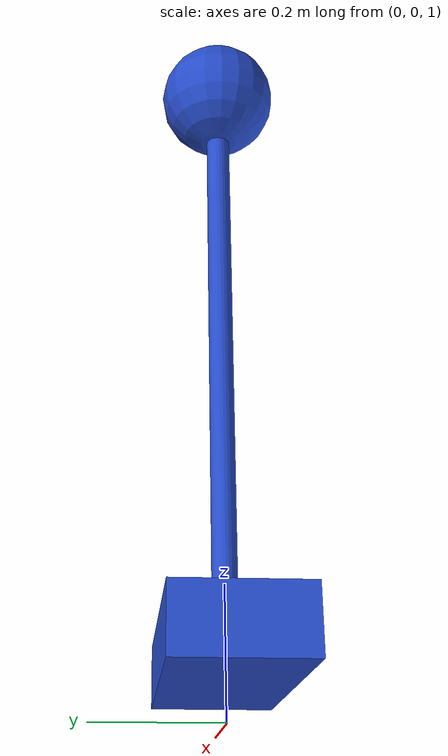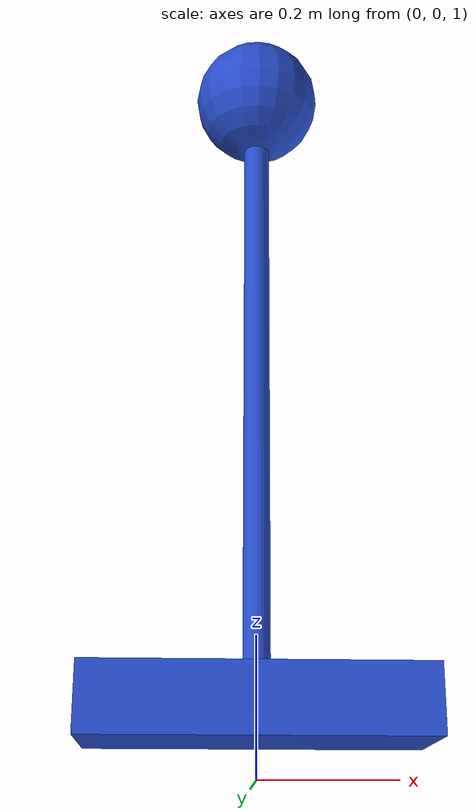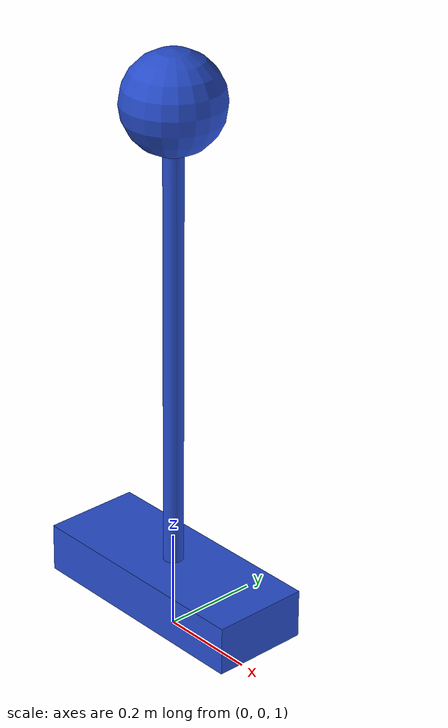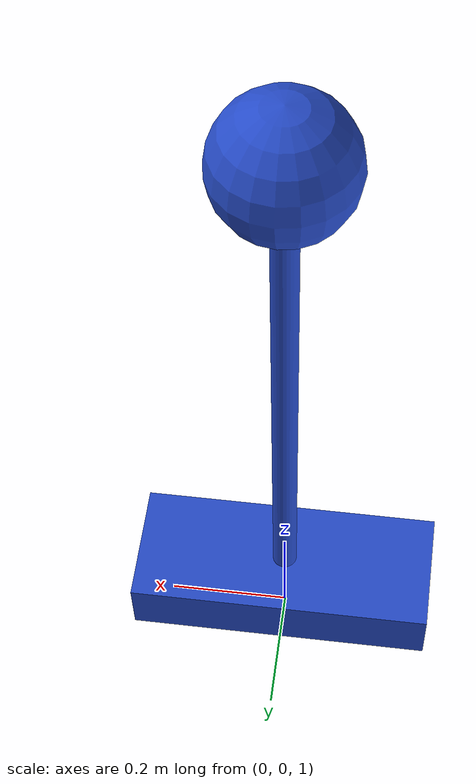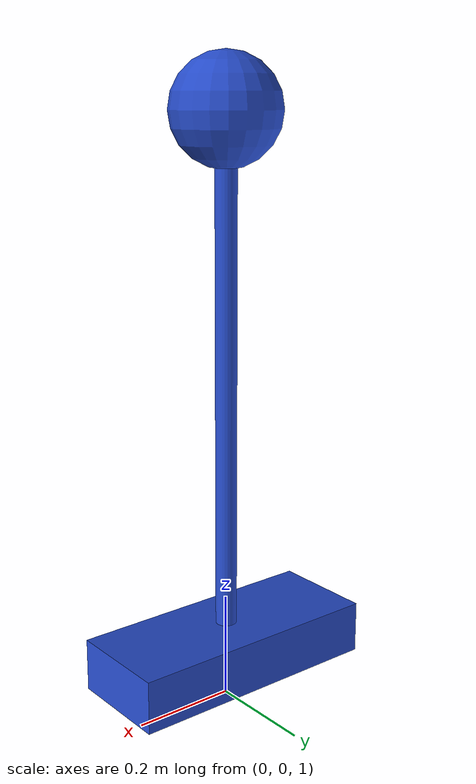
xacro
<?xml version="1.0"?>
<robot name="rrbot" xmlns:xacro="http://www.ros.org/wiki/xacro">

    <xacro:property name="rod_length" value="1.0"/>

    <link name="world"/>

    <joint name="horizontal_joint" type="prismatic">
        <origin xyz="0 0 ${rod_length+0.1}" rpy="0 0 0"/>
        <parent link="world"/>
        <child link="base_link"/>
        <axis xyz="1 0 0"/>
        <limit lower="-10" upper="10" effort="100" velocity="1"/>
        <dynamics damping="0.1"/>
    </joint>

    <link name="base_link">
        <visual>
            <origin xyz="0 0 0" rpy="0 0 0"/>
            <geometry>
                <box size="0.5 0.2 0.1"/>
            </geometry>
        </visual>
        <inertial>
            <origin xyz="0 0 0" rpy="0 0 0"/>
            <mass value="1"/>
            <inertia ixx="0.1" ixy="0" ixz="0" iyy="0.1" iyz="0" izz="0.1"/>
        </inertial>
    </link>

    <joint name="pivot_joint" type="continuous">
        <origin xyz="0 0 0" rpy="0 0 0"/>
        <parent link="base_link"/>
        <child link="rod_link"/>
        <axis xyz="0 1 0"/>
        <dynamics damping="0.1"/>
    </joint>

    <link name="rod_link">
        <visual>
            <origin xyz="0 0 ${rod_length/2}" rpy="0 0 0"/>
            <geometry>
                <cylinder radius="0.02" length="${rod_length}"/>
            </geometry>
        </visual>
        <inertial>
            <origin xyz="0 0 ${rod_length/2}" rpy="0 0 0"/>
            <mass value="0.001"/>
            <inertia ixx="0.0001" ixy="0" ixz="0" iyy="0.0001" iyz="0" izz="0.0001"/>
        </inertial>
    </link>

    <joint name="ball_joint" type="fixed">
        <origin xyz="0 0 ${rod_length}" rpy="0 0 0"/>
        <parent link="rod_link"/>
        <child link="ball_link"/>
    </joint>

    <link name="ball_link">
        <visual>
            <origin xyz="0 0 0" rpy="0 0 0"/>
            <geometry>
                <sphere radius="0.1"/>
            </geometry>
        </visual>
        <inertial>
            <origin xyz="0 0 0" rpy="0 0 0"/>
            <mass value="0.5"/>
            <inertia ixx="0.1" ixy="0" ixz="0" iyy="0.1" iyz="0" izz="0.1"/>
        </inertial>
    </link>

    <xacro:include filename="$(find inverted_pendulum_description)/urdf/ip.gazebo.xacro"/>

</robot>
